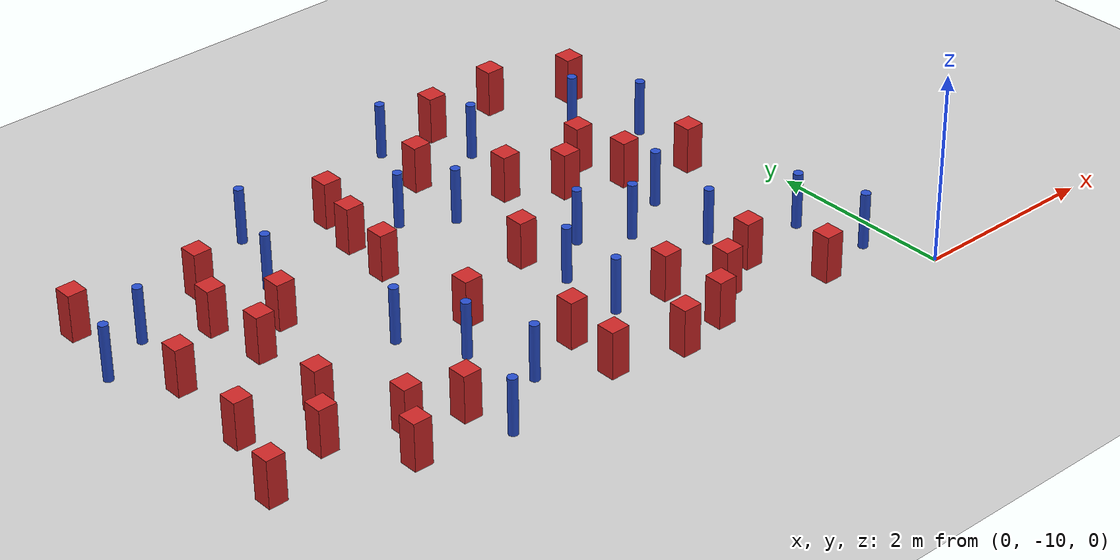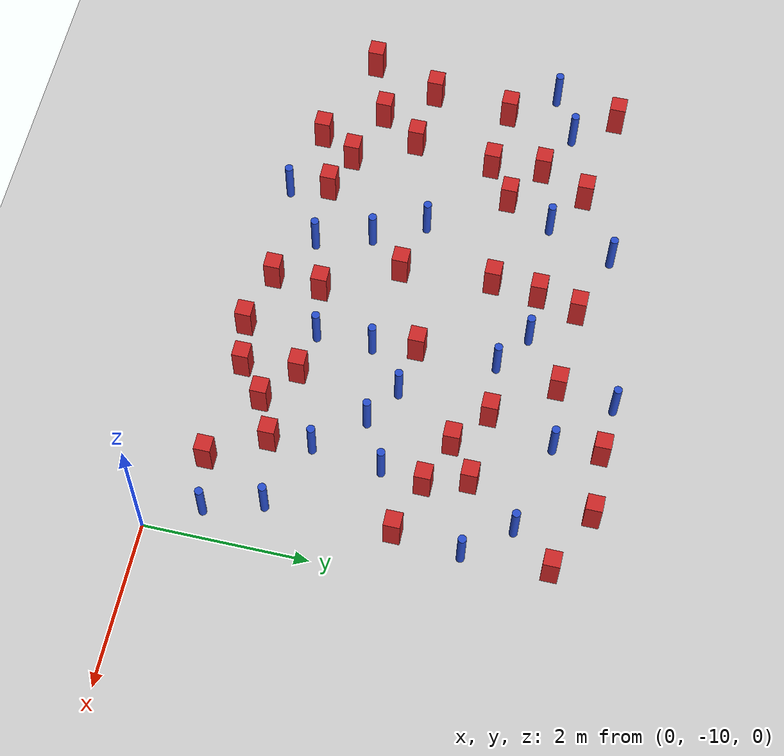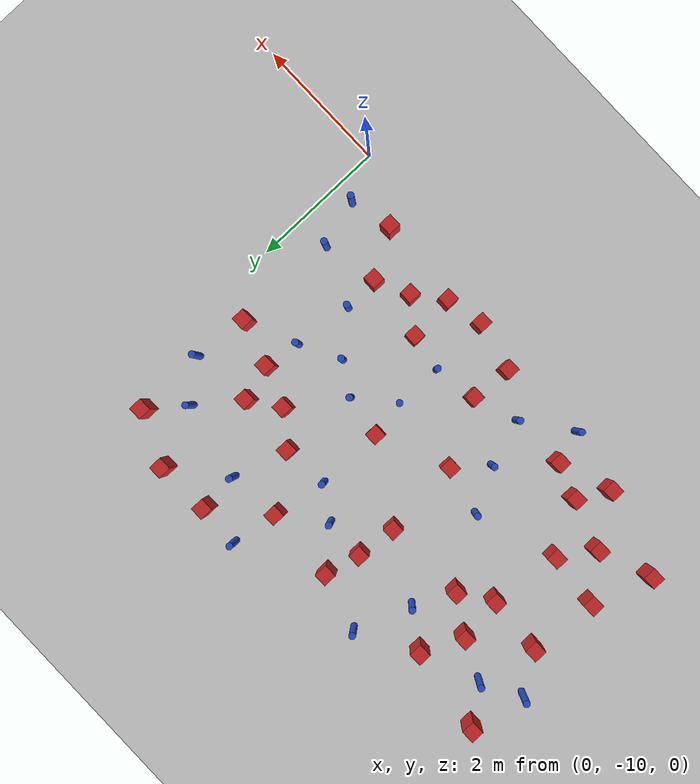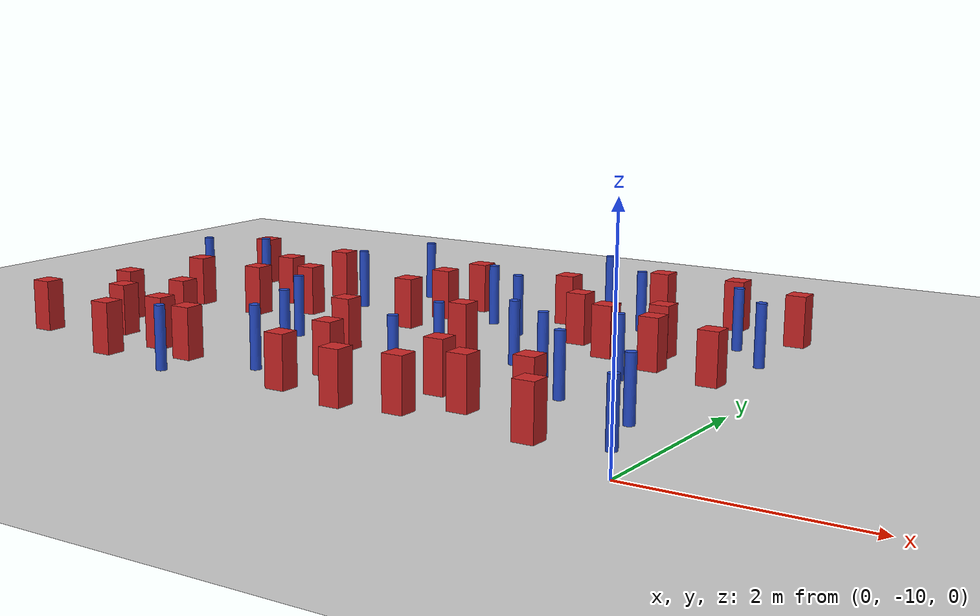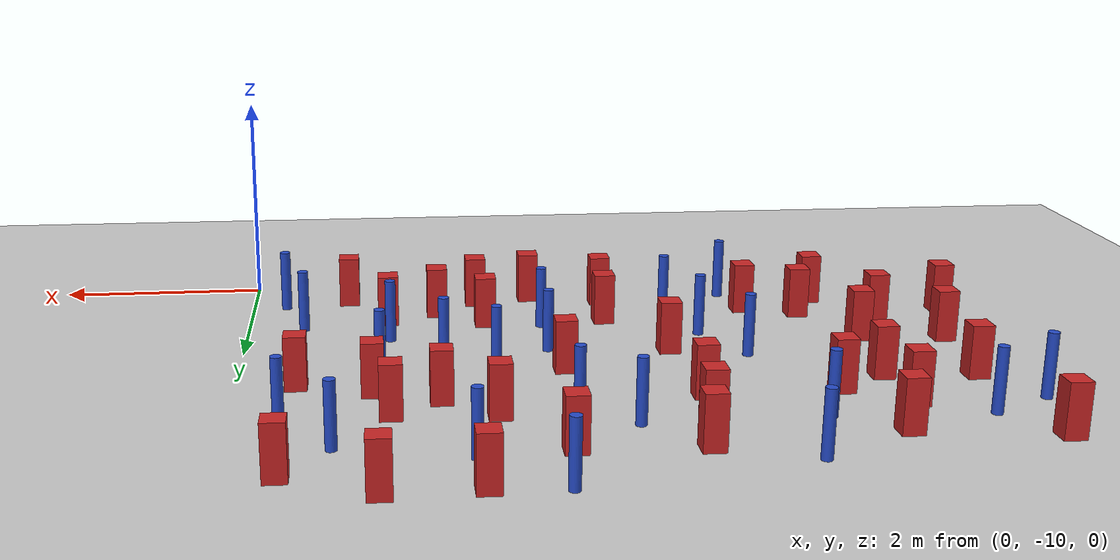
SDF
<sdf version="1.6">
 <world name="default">
  <model name="ground_plane">
   <static>1</static>
   <link name="link">
    <collision name="collision">
     <geometry><plane><normal>0 0 1</normal><size>100 100</size></plane></geometry>
     <surface><friction><ode><mu>100</mu><mu2>50</mu2></ode></friction></surface>
    </collision>
    <visual name="visual">
     <cast_shadows>0</cast_shadows>
     <geometry><plane><normal>0 0 1</normal><size>100 100</size></plane></geometry>
     <material>
      <ambient>1.0 1.0 1.0 1.0</ambient>
      <diffuse>0.8 0.8 0.8 1.0</diffuse>
      <specular>0.01 0.01 0.01 1.000000</specular>
     </material>
    </visual>
   </link>
  </model>
  <model name="square_post_obstacle1">
   <static>true</static>
   <pose>-4.05406104011 -6.65313392118 1.91545236811e-07 -7.35059704564e-06 1.12565212e-07 2.39332434364e-05</pose>
   <link name="link">
    <pose>0 0 0.25 0 -0 0</pose>
    <inertial>
     <mass>100</mass>
     <inertia>
      <ixx>0.166667</ixx>
      <ixy>0</ixy>
      <ixz>0</ixz>
      <iyy>0.166667</iyy>
      <iyz>0</iyz>
      <izz>0.166667</izz>
     </inertia>
    </inertial>
    <collision name="collision"><geometry><box><size>.2 .2 .5</size></box></geometry></collision>
    <visual name="visual">
     <geometry><box><size>.2 .2 .5</size></box></geometry>
     <material>
      <script><name>Gazebo/Red</name><uri>file://media/materials/scripts/gazebo.material</uri></script>
     </material>
    </visual>
   </link>
  </model>
  <model name="square_post_obstacle6">
   <static>true</static>
   <pose>-6.58836928079 -6.93596378803 1.91545236811e-07 -7.35059704564e-06 1.12565212e-07 2.39332434364e-05</pose>
   <link name="link">
    <pose>0 0 0.25 0 -0 0</pose>
    <inertial>
     <mass>100</mass>
     <inertia>
      <ixx>0.166667</ixx>
      <ixy>0</ixy>
      <ixz>0</ixz>
      <iyy>0.166667</iyy>
      <iyz>0</iyz>
      <izz>0.166667</izz>
     </inertia>
    </inertial>
    <collision name="collision"><geometry><box><size>.2 .2 .5</size></box></geometry></collision>
    <visual name="visual">
     <geometry><box><size>.2 .2 .5</size></box></geometry>
     <material>
      <script><name>Gazebo/Red</name><uri>file://media/materials/scripts/gazebo.material</uri></script>
     </material>
    </visual>
   </link>
  </model>
  <model name="pole_obstacle13">
   <static>true</static>
   <pose>-4.3625713466 -8.25112892391 7.38925637345e-09 -8.471706928e-08 1.24976765081e-08 -1.74513093015e-07</pose>
   <link name="link">
    <pose>0 0 0.3 0 -0 0</pose>
    <inertial>
     <mass>1</mass>
     <inertia><ixx>0.145833</ixx><ixy>0</ixy><ixz>0</ixz><iyy>0.145833</iyy><iyz>0</iyz><izz>0.125</izz></inertia>
    </inertial>
    <collision name="collision">
     <geometry><cylinder><radius>0.05</radius><length>.6</length></cylinder></geometry>
    </collision>
    <visual name="visual">
     <geometry><cylinder><radius>0.05</radius><length>.6</length></cylinder></geometry>
     <material>
      <script><name>Gazebo/Blue</name><uri>file://media/materials/scripts/gazebo.material</uri></script>
     </material>
    </visual>
   </link>
  </model>
  <model name="pole_obstacle16">
   <static>true</static>
   <pose>-2.92798849362 -6.37919924518 7.38925637345e-09 -8.47170692798e-08 1.24976765033e-08 -1.74513093019e-07</pose>
   <link name="link">
    <pose>0 0 0.3 0 -0 0</pose>
    <inertial>
     <mass>1</mass>
     <inertia><ixx>0.145833</ixx><ixy>0</ixy><ixz>0</ixz><iyy>0.145833</iyy><iyz>0</iyz><izz>0.125</izz></inertia>
    </inertial>
    <collision name="collision">
     <geometry><cylinder><radius>0.05</radius><length>.6</length></cylinder></geometry>
    </collision>
    <visual name="visual">
     <geometry><cylinder><radius>0.05</radius><length>.6</length></cylinder></geometry>
     <material>
      <script><name>Gazebo/Blue</name><uri>file://media/materials/scripts/gazebo.material</uri></script>
     </material>
    </visual>
   </link>
  </model>
  <model name="pole_obstacle17">
   <static>true</static>
   <pose>-6.41054166428 -6.06811445433 7.38925637345e-09 -8.47170692796e-08 1.24976764786e-08 -1.74513093032e-07</pose>
   <link name="link">
    <pose>0 0 0.3 0 -0 0</pose>
    <inertial>
     <mass>1</mass>
     <inertia><ixx>0.145833</ixx><ixy>0</ixy><ixz>0</ixz><iyy>0.145833</iyy><iyz>0</iyz><izz>0.125</izz></inertia>
    </inertial>
    <collision name="collision">
     <geometry><cylinder><radius>0.05</radius><length>.6</length></cylinder></geometry>
    </collision>
    <visual name="visual">
     <geometry><cylinder><radius>0.05</radius><length>.6</length></cylinder></geometry>
     <material>
      <script><name>Gazebo/Blue</name><uri>file://media/materials/scripts/gazebo.material</uri></script>
     </material>
    </visual>
   </link>
  </model>
  <model name="square_post_obstacle25">
   <static>true</static>
   <pose>-1.85253295231 -9.04641021801 1.91545236811e-07 -7.35059704564e-06 1.12565212e-07 2.39332434364e-05</pose>
   <link name="link">
    <pose>0 0 0.25 0 -0 0</pose>
    <inertial>
     <mass>100</mass>
     <inertia>
      <ixx>0.166667</ixx>
      <ixy>0</ixy>
      <ixz>0</ixz>
      <iyy>0.166667</iyy>
      <iyz>0</iyz>
      <izz>0.166667</izz>
     </inertia>
    </inertial>
    <collision name="collision"><geometry><box><size>.2 .2 .5</size></box></geometry></collision>
    <visual name="visual">
     <geometry><box><size>.2 .2 .5</size></box></geometry>
     <material>
      <script><name>Gazebo/Red</name><uri>file://media/materials/scripts/gazebo.material</uri></script>
     </material>
    </visual>
   </link>
  </model>
  <model name="square_post_obstacle30">
   <static>true</static>
   <pose>-3.97642416767 -7.80159817159 1.91545236811e-07 -7.35059704564e-06 1.12565212e-07 2.39332434364e-05</pose>
   <link name="link">
    <pose>0 0 0.25 0 -0 0</pose>
    <inertial>
     <mass>100</mass>
     <inertia>
      <ixx>0.166667</ixx>
      <ixy>0</ixy>
      <ixz>0</ixz>
      <iyy>0.166667</iyy>
      <iyz>0</iyz>
      <izz>0.166667</izz>
     </inertia>
    </inertial>
    <collision name="collision"><geometry><box><size>.2 .2 .5</size></box></geometry></collision>
    <visual name="visual">
     <geometry><box><size>.2 .2 .5</size></box></geometry>
     <material>
      <script><name>Gazebo/Red</name><uri>file://media/materials/scripts/gazebo.material</uri></script>
     </material>
    </visual>
   </link>
  </model>
  <model name="pole_obstacle33">
   <static>true</static>
   <pose>-3.39611173939 -6.06885074046 7.38925637345e-09 -8.47170692798e-08 1.24976765033e-08 -1.74513093019e-07</pose>
   <link name="link">
    <pose>0 0 0.3 0 -0 0</pose>
    <inertial>
     <mass>1</mass>
     <inertia><ixx>0.145833</ixx><ixy>0</ixy><ixz>0</ixz><iyy>0.145833</iyy><iyz>0</iyz><izz>0.125</izz></inertia>
    </inertial>
    <collision name="collision">
     <geometry><cylinder><radius>0.05</radius><length>.6</length></cylinder></geometry>
    </collision>
    <visual name="visual">
     <geometry><cylinder><radius>0.05</radius><length>.6</length></cylinder></geometry>
     <material>
      <script><name>Gazebo/Blue</name><uri>file://media/materials/scripts/gazebo.material</uri></script>
     </material>
    </visual>
   </link>
  </model>
  <model name="pole_obstacle36">
   <static>true</static>
   <pose>-0.428476729315 -6.30444517662 7.38925637345e-09 -8.471706928e-08 1.24976765079e-08 -1.74513093015e-07</pose>
   <link name="link">
    <pose>0 0 0.3 0 -0 0</pose>
    <inertial>
     <mass>1</mass>
     <inertia><ixx>0.145833</ixx><ixy>0</ixy><ixz>0</ixz><iyy>0.145833</iyy><iyz>0</iyz><izz>0.125</izz></inertia>
    </inertial>
    <collision name="collision">
     <geometry><cylinder><radius>0.05</radius><length>.6</length></cylinder></geometry>
    </collision>
    <visual name="visual">
     <geometry><cylinder><radius>0.05</radius><length>.6</length></cylinder></geometry>
     <material>
      <script><name>Gazebo/Blue</name><uri>file://media/materials/scripts/gazebo.material</uri></script>
     </material>
    </visual>
   </link>
  </model>
  <model name="pole_obstacle42">
   <static>true</static>
   <pose>-1.85867727013 -7.74305967935 7.38925637345e-09 -8.47170692799e-08 1.24976765033e-08 -1.74513093018e-07</pose>
   <link name="link">
    <pose>0 0 0.3 0 -0 0</pose>
    <inertial>
     <mass>1</mass>
     <inertia><ixx>0.145833</ixx><ixy>0</ixy><ixz>0</ixz><iyy>0.145833</iyy><iyz>0</iyz><izz>0.125</izz></inertia>
    </inertial>
    <collision name="collision">
     <geometry><cylinder><radius>0.05</radius><length>.6</length></cylinder></geometry>
    </collision>
    <visual name="visual">
     <geometry><cylinder><radius>0.05</radius><length>.6</length></cylinder></geometry>
     <material>
      <script><name>Gazebo/Blue</name><uri>file://media/materials/scripts/gazebo.material</uri></script>
     </material>
    </visual>
   </link>
  </model>
  <model name="square_post_obstacle49">
   <static>true</static>
   <pose>-2.04827190531 -4.94344330542 1.91545236811e-07 -7.35059704564e-06 1.12565212e-07 2.39332434364e-05</pose>
   <link name="link">
    <pose>0 0 0.25 0 -0 0</pose>
    <inertial>
     <mass>100</mass>
     <inertia>
      <ixx>0.166667</ixx>
      <ixy>0</ixy>
      <ixz>0</ixz>
      <iyy>0.166667</iyy>
      <iyz>0</iyz>
      <izz>0.166667</izz>
     </inertia>
    </inertial>
    <collision name="collision"><geometry><box><size>.2 .2 .5</size></box></geometry></collision>
    <visual name="visual">
     <geometry><box><size>.2 .2 .5</size></box></geometry>
     <material>
      <script><name>Gazebo/Red</name><uri>file://media/materials/scripts/gazebo.material</uri></script>
     </material>
    </visual>
   </link>
  </model>
  <model name="pole_obstacle55">
   <static>true</static>
   <pose>-0.327465769839 -9.36034623043 7.38925637345e-09 -8.47170692796e-08 1.24976764724e-08 -1.74513093036e-07</pose>
   <link name="link">
    <pose>0 0 0.3 0 -0 0</pose>
    <inertial>
     <mass>1</mass>
     <inertia><ixx>0.145833</ixx><ixy>0</ixy><ixz>0</ixz><iyy>0.145833</iyy><iyz>0</iyz><izz>0.125</izz></inertia>
    </inertial>
    <collision name="collision">
     <geometry><cylinder><radius>0.05</radius><length>.6</length></cylinder></geometry>
    </collision>
    <visual name="visual">
     <geometry><cylinder><radius>0.05</radius><length>.6</length></cylinder></geometry>
     <material>
      <script><name>Gazebo/Blue</name><uri>file://media/materials/scripts/gazebo.material</uri></script>
     </material>
    </visual>
   </link>
  </model>
  <model name="square_post_obstacle58">
   <static>true</static>
   <pose>-5.28366621623 -6.68861473166 1.91545236811e-07 -7.35059704564e-06 1.12565212e-07 2.39332434364e-05</pose>
   <link name="link">
    <pose>0 0 0.25 0 -0 0</pose>
    <inertial>
     <mass>100</mass>
     <inertia>
      <ixx>0.166667</ixx>
      <ixy>0</ixy>
      <ixz>0</ixz>
      <iyy>0.166667</iyy>
      <iyz>0</iyz>
      <izz>0.166667</izz>
     </inertia>
    </inertial>
    <collision name="collision"><geometry><box><size>.2 .2 .5</size></box></geometry></collision>
    <visual name="visual">
     <geometry><box><size>.2 .2 .5</size></box></geometry>
     <material>
      <script><name>Gazebo/Red</name><uri>file://media/materials/scripts/gazebo.material</uri></script>
     </material>
    </visual>
   </link>
  </model>
  <model name="pole_obstacle58">
   <static>true</static>
   <pose>-2.84723843766 -7.90626648516 7.38925637345e-09 -8.47170692798e-08 1.24976765033e-08 -1.74513093019e-07</pose>
   <link name="link">
    <pose>0 0 0.3 0 -0 0</pose>
    <inertial>
     <mass>1</mass>
     <inertia><ixx>0.145833</ixx><ixy>0</ixy><ixz>0</ixz><iyy>0.145833</iyy><iyz>0</iyz><izz>0.125</izz></inertia>
    </inertial>
    <collision name="collision">
     <geometry><cylinder><radius>0.05</radius><length>.6</length></cylinder></geometry>
    </collision>
    <visual name="visual">
     <geometry><cylinder><radius>0.05</radius><length>.6</length></cylinder></geometry>
     <material>
      <script><name>Gazebo/Blue</name><uri>file://media/materials/scripts/gazebo.material</uri></script>
     </material>
    </visual>
   </link>
  </model>
  <model name="square_post_obstacle64">
   <static>true</static>
   <pose>-6.97566370245 -8.79320440662 1.91545236811e-07 -7.35059704564e-06 1.12565212e-07 2.39332434364e-05</pose>
   <link name="link">
    <pose>0 0 0.25 0 -0 0</pose>
    <inertial>
     <mass>100</mass>
     <inertia>
      <ixx>0.166667</ixx>
      <ixy>0</ixy>
      <ixz>0</ixz>
      <iyy>0.166667</iyy>
      <iyz>0</iyz>
      <izz>0.166667</izz>
     </inertia>
    </inertial>
    <collision name="collision"><geometry><box><size>.2 .2 .5</size></box></geometry></collision>
    <visual name="visual">
     <geometry><box><size>.2 .2 .5</size></box></geometry>
     <material>
      <script><name>Gazebo/Red</name><uri>file://media/materials/scripts/gazebo.material</uri></script>
     </material>
    </visual>
   </link>
  </model>
  <model name="square_post_obstacle77">
   <static>true</static>
   <pose>-5.74526001308 -6.99516037562 1.91545236811e-07 -7.35059704564e-06 1.12565212e-07 2.39332434364e-05</pose>
   <link name="link">
    <pose>0 0 0.25 0 -0 0</pose>
    <inertial>
     <mass>100</mass>
     <inertia>
      <ixx>0.166667</ixx>
      <ixy>0</ixy>
      <ixz>0</ixz>
      <iyy>0.166667</iyy>
      <iyz>0</iyz>
      <izz>0.166667</izz>
     </inertia>
    </inertial>
    <collision name="collision"><geometry><box><size>.2 .2 .5</size></box></geometry></collision>
    <visual name="visual">
     <geometry><box><size>.2 .2 .5</size></box></geometry>
     <material>
      <script><name>Gazebo/Red</name><uri>file://media/materials/scripts/gazebo.material</uri></script>
     </material>
    </visual>
   </link>
  </model>
  <model name="square_post_obstacle81">
   <static>true</static>
   <pose>-5.47505383534 -8.76458230181 1.91545236811e-07 -7.35059704564e-06 1.12565212e-07 2.39332434364e-05</pose>
   <link name="link">
    <pose>0 0 0.25 0 -0 0</pose>
    <inertial>
     <mass>100</mass>
     <inertia>
      <ixx>0.166667</ixx>
      <ixy>0</ixy>
      <ixz>0</ixz>
      <iyy>0.166667</iyy>
      <iyz>0</iyz>
      <izz>0.166667</izz>
     </inertia>
    </inertial>
    <collision name="collision"><geometry><box><size>.2 .2 .5</size></box></geometry></collision>
    <visual name="visual">
     <geometry><box><size>.2 .2 .5</size></box></geometry>
     <material>
      <script><name>Gazebo/Red</name><uri>file://media/materials/scripts/gazebo.material</uri></script>
     </material>
    </visual>
   </link>
  </model>
  <model name="square_post_obstacle83">
   <static>true</static>
   <pose>-6.7935182337 -5.56143783316 1.91545236811e-07 -7.35059704564e-06 1.12565212e-07 2.39332434364e-05</pose>
   <link name="link">
    <pose>0 0 0.25 0 -0 0</pose>
    <inertial>
     <mass>100</mass>
     <inertia>
      <ixx>0.166667</ixx>
      <ixy>0</ixy>
      <ixz>0</ixz>
      <iyy>0.166667</iyy>
      <iyz>0</iyz>
      <izz>0.166667</izz>
     </inertia>
    </inertial>
    <collision name="collision"><geometry><box><size>.2 .2 .5</size></box></geometry></collision>
    <visual name="visual">
     <geometry><box><size>.2 .2 .5</size></box></geometry>
     <material>
      <script><name>Gazebo/Red</name><uri>file://media/materials/scripts/gazebo.material</uri></script>
     </material>
    </visual>
   </link>
  </model>
  <model name="square_post_obstacle93">
   <static>true</static>
   <pose>-3.4948796606 -8.70978752099 1.91545236811e-07 -7.35059704564e-06 1.12565212e-07 2.39332434364e-05</pose>
   <link name="link">
    <pose>0 0 0.25 0 -0 0</pose>
    <inertial>
     <mass>100</mass>
     <inertia>
      <ixx>0.166667</ixx>
      <ixy>0</ixy>
      <ixz>0</ixz>
      <iyy>0.166667</iyy>
      <iyz>0</iyz>
      <izz>0.166667</izz>
     </inertia>
    </inertial>
    <collision name="collision"><geometry><box><size>.2 .2 .5</size></box></geometry></collision>
    <visual name="visual">
     <geometry><box><size>.2 .2 .5</size></box></geometry>
     <material>
      <script><name>Gazebo/Red</name><uri>file://media/materials/scripts/gazebo.material</uri></script>
     </material>
    </visual>
   </link>
  </model>
  <model name="square_post_obstacle94">
   <static>true</static>
   <pose>-1.3518897373 -6.391897143 1.91545236811e-07 -7.35059704564e-06 1.12565212e-07 2.39332434364e-05</pose>
   <link name="link">
    <pose>0 0 0.25 0 -0 0</pose>
    <inertial>
     <mass>100</mass>
     <inertia>
      <ixx>0.166667</ixx>
      <ixy>0</ixy>
      <ixz>0</ixz>
      <iyy>0.166667</iyy>
      <iyz>0</iyz>
      <izz>0.166667</izz>
     </inertia>
    </inertial>
    <collision name="collision"><geometry><box><size>.2 .2 .5</size></box></geometry></collision>
    <visual name="visual">
     <geometry><box><size>.2 .2 .5</size></box></geometry>
     <material>
      <script><name>Gazebo/Red</name><uri>file://media/materials/scripts/gazebo.material</uri></script>
     </material>
    </visual>
   </link>
  </model>
  <model name="square_post_obstacle95">
   <static>true</static>
   <pose>-2.31485177398 -8.69892524037 1.91545236811e-07 -7.35059704564e-06 1.12565212e-07 2.39332434364e-05</pose>
   <link name="link">
    <pose>0 0 0.25 0 -0 0</pose>
    <inertial>
     <mass>100</mass>
     <inertia>
      <ixx>0.166667</ixx>
      <ixy>0</ixy>
      <ixz>0</ixz>
      <iyy>0.166667</iyy>
      <iyz>0</iyz>
      <izz>0.166667</izz>
     </inertia>
    </inertial>
    <collision name="collision"><geometry><box><size>.2 .2 .5</size></box></geometry></collision>
    <visual name="visual">
     <geometry><box><size>.2 .2 .5</size></box></geometry>
     <material>
      <script><name>Gazebo/Red</name><uri>file://media/materials/scripts/gazebo.material</uri></script>
     </material>
    </visual>
   </link>
  </model>
  <model name="pole_obstacle111">
   <static>true</static>
   <pose>-0.537189609881 -8.66637915086 7.38925637345e-09 -8.47170692796e-08 1.24976764704e-08 -1.74513093037e-07</pose>
   <link name="link">
    <pose>0 0 0.3 0 -0 0</pose>
    <inertial>
     <mass>1</mass>
     <inertia><ixx>0.145833</ixx><ixy>0</ixy><ixz>0</ixz><iyy>0.145833</iyy><iyz>0</iyz><izz>0.125</izz></inertia>
    </inertial>
    <collision name="collision">
     <geometry><cylinder><radius>0.05</radius><length>.6</length></cylinder></geometry>
    </collision>
    <visual name="visual">
     <geometry><cylinder><radius>0.05</radius><length>.6</length></cylinder></geometry>
     <material>
      <script><name>Gazebo/Blue</name><uri>file://media/materials/scripts/gazebo.material</uri></script>
     </material>
    </visual>
   </link>
  </model>
  <model name="square_post_obstacle106">
   <static>true</static>
   <pose>-2.78861553826 -5.60229423198 1.91545236811e-07 -7.35059704564e-06 1.12565212e-07 2.39332434364e-05</pose>
   <link name="link">
    <pose>0 0 0.25 0 -0 0</pose>
    <inertial>
     <mass>100</mass>
     <inertia>
      <ixx>0.166667</ixx>
      <ixy>0</ixy>
      <ixz>0</ixz>
      <iyy>0.166667</iyy>
      <iyz>0</iyz>
      <izz>0.166667</izz>
     </inertia>
    </inertial>
    <collision name="collision"><geometry><box><size>.2 .2 .5</size></box></geometry></collision>
    <visual name="visual">
     <geometry><box><size>.2 .2 .5</size></box></geometry>
     <material>
      <script><name>Gazebo/Red</name><uri>file://media/materials/scripts/gazebo.material</uri></script>
     </material>
    </visual>
   </link>
  </model>
  <model name="pole_obstacle120">
   <static>true</static>
   <pose>-5.00864935056 -6.10837817905 7.38925637345e-09 -8.47170692796e-08 1.24976764786e-08 -1.74513093032e-07</pose>
   <link name="link">
    <pose>0 0 0.3 0 -0 0</pose>
    <inertial>
     <mass>1</mass>
     <inertia><ixx>0.145833</ixx><ixy>0</ixy><ixz>0</ixz><iyy>0.145833</iyy><iyz>0</iyz><izz>0.125</izz></inertia>
    </inertial>
    <collision name="collision">
     <geometry><cylinder><radius>0.05</radius><length>.6</length></cylinder></geometry>
    </collision>
    <visual name="visual">
     <geometry><cylinder><radius>0.05</radius><length>.6</length></cylinder></geometry>
     <material>
      <script><name>Gazebo/Blue</name><uri>file://media/materials/scripts/gazebo.material</uri></script>
     </material>
    </visual>
   </link>
  </model>
  <model name="pole_obstacle132">
   <static>true</static>
   <pose>-1.37706348017 -8.30040814428 7.38925637345e-09 -8.47170692798e-08 1.24976764881e-08 -1.74513093027e-07</pose>
   <link name="link">
    <pose>0 0 0.3 0 -0 0</pose>
    <inertial>
     <mass>1</mass>
     <inertia><ixx>0.145833</ixx><ixy>0</ixy><ixz>0</ixz><iyy>0.145833</iyy><iyz>0</iyz><izz>0.125</izz></inertia>
    </inertial>
    <collision name="collision">
     <geometry><cylinder><radius>0.05</radius><length>.6</length></cylinder></geometry>
    </collision>
    <visual name="visual">
     <geometry><cylinder><radius>0.05</radius><length>.6</length></cylinder></geometry>
     <material>
      <script><name>Gazebo/Blue</name><uri>file://media/materials/scripts/gazebo.material</uri></script>
     </material>
    </visual>
   </link>
  </model>
  <model name="pole_obstacle136">
   <static>true</static>
   <pose>-2.68079597395 -4.89845228056 7.38925637345e-09 -8.47170692798e-08 1.24976765033e-08 -1.74513093019e-07</pose>
   <link name="link">
    <pose>0 0 0.3 0 -0 0</pose>
    <inertial>
     <mass>1</mass>
     <inertia><ixx>0.145833</ixx><ixy>0</ixy><ixz>0</ixz><iyy>0.145833</iyy><iyz>0</iyz><izz>0.125</izz></inertia>
    </inertial>
    <collision name="collision">
     <geometry><cylinder><radius>0.05</radius><length>.6</length></cylinder></geometry>
    </collision>
    <visual name="visual">
     <geometry><cylinder><radius>0.05</radius><length>.6</length></cylinder></geometry>
     <material>
      <script><name>Gazebo/Blue</name><uri>file://media/materials/scripts/gazebo.material</uri></script>
     </material>
    </visual>
   </link>
  </model>
  <model name="pole_obstacle137">
   <static>true</static>
   <pose>-1.27037042421 -7.43815500465 7.38925637345e-09 -8.47170692799e-08 1.24976765033e-08 -1.74513093018e-07</pose>
   <link name="link">
    <pose>0 0 0.3 0 -0 0</pose>
    <inertial>
     <mass>1</mass>
     <inertia><ixx>0.145833</ixx><ixy>0</ixy><ixz>0</ixz><iyy>0.145833</iyy><iyz>0</iyz><izz>0.125</izz></inertia>
    </inertial>
    <collision name="collision">
     <geometry><cylinder><radius>0.05</radius><length>.6</length></cylinder></geometry>
    </collision>
    <visual name="visual">
     <geometry><cylinder><radius>0.05</radius><length>.6</length></cylinder></geometry>
     <material>
      <script><name>Gazebo/Blue</name><uri>file://media/materials/scripts/gazebo.material</uri></script>
     </material>
    </visual>
   </link>
  </model>
  <model name="square_post_obstacle119">
   <static>true</static>
   <pose>-0.531783871129 -7.12682585882 1.91545236811e-07 -7.35059704564e-06 1.12565212e-07 2.39332434364e-05</pose>
   <link name="link">
    <pose>0 0 0.25 0 -0 0</pose>
    <inertial>
     <mass>100</mass>
     <inertia>
      <ixx>0.166667</ixx>
      <ixy>0</ixy>
      <ixz>0</ixz>
      <iyy>0.166667</iyy>
      <iyz>0</iyz>
      <izz>0.166667</izz>
     </inertia>
    </inertial>
    <collision name="collision"><geometry><box><size>.2 .2 .5</size></box></geometry></collision>
    <visual name="visual">
     <geometry><box><size>.2 .2 .5</size></box></geometry>
     <material>
      <script><name>Gazebo/Red</name><uri>file://media/materials/scripts/gazebo.material</uri></script>
     </material>
    </visual>
   </link>
  </model>
  <model name="square_post_obstacle122">
   <static>true</static>
   <pose>-0.470363385983 -5.26293189593 1.91545236811e-07 -7.35059704564e-06 1.12565212e-07 2.39332434364e-05</pose>
   <link name="link">
    <pose>0 0 0.25 0 -0 0</pose>
    <inertial>
     <mass>100</mass>
     <inertia>
      <ixx>0.166667</ixx>
      <ixy>0</ixy>
      <ixz>0</ixz>
      <iyy>0.166667</iyy>
      <iyz>0</iyz>
      <izz>0.166667</izz>
     </inertia>
    </inertial>
    <collision name="collision"><geometry><box><size>.2 .2 .5</size></box></geometry></collision>
    <visual name="visual">
     <geometry><box><size>.2 .2 .5</size></box></geometry>
     <material>
      <script><name>Gazebo/Red</name><uri>file://media/materials/scripts/gazebo.material</uri></script>
     </material>
    </visual>
   </link>
  </model>
  <model name="square_post_obstacle131">
   <static>true</static>
   <pose>-3.99109454356 -6.06677961818 1.91545236811e-07 -7.35059704564e-06 1.12565212e-07 2.39332434364e-05</pose>
   <link name="link">
    <pose>0 0 0.25 0 -0 0</pose>
    <inertial>
     <mass>100</mass>
     <inertia>
      <ixx>0.166667</ixx>
      <ixy>0</ixy>
      <ixz>0</ixz>
      <iyy>0.166667</iyy>
      <iyz>0</iyz>
      <izz>0.166667</izz>
     </inertia>
    </inertial>
    <collision name="collision"><geometry><box><size>.2 .2 .5</size></box></geometry></collision>
    <visual name="visual">
     <geometry><box><size>.2 .2 .5</size></box></geometry>
     <material>
      <script><name>Gazebo/Red</name><uri>file://media/materials/scripts/gazebo.material</uri></script>
     </material>
    </visual>
   </link>
  </model>
  <model name="square_post_obstacle134">
   <static>true</static>
   <pose>-6.68122382151 -7.93561292781 1.91545236811e-07 -7.35059704564e-06 1.12565212e-07 2.39332434364e-05</pose>
   <link name="link">
    <pose>0 0 0.25 0 -0 0</pose>
    <inertial>
     <mass>100</mass>
     <inertia>
      <ixx>0.166667</ixx>
      <ixy>0</ixy>
      <ixz>0</ixz>
      <iyy>0.166667</iyy>
      <iyz>0</iyz>
      <izz>0.166667</izz>
     </inertia>
    </inertial>
    <collision name="collision"><geometry><box><size>.2 .2 .5</size></box></geometry></collision>
    <visual name="visual">
     <geometry><box><size>.2 .2 .5</size></box></geometry>
     <material>
      <script><name>Gazebo/Red</name><uri>file://media/materials/scripts/gazebo.material</uri></script>
     </material>
    </visual>
   </link>
  </model>
  <model name="pole_obstacle145">
   <static>true</static>
   <pose>-4.70202046611 -5.28117678039 7.38925637345e-09 -8.47170692796e-08 1.24976764786e-08 -1.74513093032e-07</pose>
   <link name="link">
    <pose>0 0 0.3 0 -0 0</pose>
    <inertial>
     <mass>1</mass>
     <inertia><ixx>0.145833</ixx><ixy>0</ixy><ixz>0</ixz><iyy>0.145833</iyy><iyz>0</iyz><izz>0.125</izz></inertia>
    </inertial>
    <collision name="collision">
     <geometry><cylinder><radius>0.05</radius><length>.6</length></cylinder></geometry>
    </collision>
    <visual name="visual">
     <geometry><cylinder><radius>0.05</radius><length>.6</length></cylinder></geometry>
     <material>
      <script><name>Gazebo/Blue</name><uri>file://media/materials/scripts/gazebo.material</uri></script>
     </material>
    </visual>
   </link>
  </model>
  <model name="square_post_obstacle136">
   <static>true</static>
   <pose>-6.20697989284 -8.51069006357 1.91545236811e-07 -7.35059704564e-06 1.12565212e-07 2.39332434364e-05</pose>
   <link name="link">
    <pose>0 0 0.25 0 -0 0</pose>
    <inertial>
     <mass>100</mass>
     <inertia>
      <ixx>0.166667</ixx>
      <ixy>0</ixy>
      <ixz>0</ixz>
      <iyy>0.166667</iyy>
      <iyz>0</iyz>
      <izz>0.166667</izz>
     </inertia>
    </inertial>
    <collision name="collision"><geometry><box><size>.2 .2 .5</size></box></geometry></collision>
    <visual name="visual">
     <geometry><box><size>.2 .2 .5</size></box></geometry>
     <material>
      <script><name>Gazebo/Red</name><uri>file://media/materials/scripts/gazebo.material</uri></script>
     </material>
    </visual>
   </link>
  </model>
  <model name="square_post_obstacle139">
   <static>true</static>
   <pose>-1.24682781891 -4.91015835469 1.91545236811e-07 -7.35059704564e-06 1.12565212e-07 2.39332434364e-05</pose>
   <link name="link">
    <pose>0 0 0.25 0 -0 0</pose>
    <inertial>
     <mass>100</mass>
     <inertia>
      <ixx>0.166667</ixx>
      <ixy>0</ixy>
      <ixz>0</ixz>
      <iyy>0.166667</iyy>
      <iyz>0</iyz>
      <izz>0.166667</izz>
     </inertia>
    </inertial>
    <collision name="collision"><geometry><box><size>.2 .2 .5</size></box></geometry></collision>
    <visual name="visual">
     <geometry><box><size>.2 .2 .5</size></box></geometry>
     <material>
      <script><name>Gazebo/Red</name><uri>file://media/materials/scripts/gazebo.material</uri></script>
     </material>
    </visual>
   </link>
  </model>
  <model name="square_post_obstacle146">
   <static>true</static>
   <pose>-4.95856964244 -8.94976178115 1.91545236811e-07 -7.35059704564e-06 1.12565212e-07 2.39332434364e-05</pose>
   <link name="link">
    <pose>0 0 0.25 0 -0 0</pose>
    <inertial>
     <mass>100</mass>
     <inertia>
      <ixx>0.166667</ixx>
      <ixy>0</ixy>
      <ixz>0</ixz>
      <iyy>0.166667</iyy>
      <iyz>0</iyz>
      <izz>0.166667</izz>
     </inertia>
    </inertial>
    <collision name="collision"><geometry><box><size>.2 .2 .5</size></box></geometry></collision>
    <visual name="visual">
     <geometry><box><size>.2 .2 .5</size></box></geometry>
     <material>
      <script><name>Gazebo/Red</name><uri>file://media/materials/scripts/gazebo.material</uri></script>
     </material>
    </visual>
   </link>
  </model>
  <model name="square_post_obstacle148">
   <static>true</static>
   <pose>-0.970080432374 -9.4889126072 1.91545236811e-07 -7.35059704564e-06 1.12565212e-07 2.39332434364e-05</pose>
   <link name="link">
    <pose>0 0 0.25 0 -0 0</pose>
    <inertial>
     <mass>100</mass>
     <inertia>
      <ixx>0.166667</ixx>
      <ixy>0</ixy>
      <ixz>0</ixz>
      <iyy>0.166667</iyy>
      <iyz>0</iyz>
      <izz>0.166667</izz>
     </inertia>
    </inertial>
    <collision name="collision"><geometry><box><size>.2 .2 .5</size></box></geometry></collision>
    <visual name="visual">
     <geometry><box><size>.2 .2 .5</size></box></geometry>
     <material>
      <script><name>Gazebo/Red</name><uri>file://media/materials/scripts/gazebo.material</uri></script>
     </material>
    </visual>
   </link>
  </model>
  <model name="square_post_obstacle150">
   <static>true</static>
   <pose>-2.25700415189 -6.33212168752 1.91545236811e-07 -7.35059704564e-06 1.12565212e-07 2.39332434364e-05</pose>
   <link name="link">
    <pose>0 0 0.25 0 -0 0</pose>
    <inertial>
     <mass>100</mass>
     <inertia>
      <ixx>0.166667</ixx>
      <ixy>0</ixy>
      <ixz>0</ixz>
      <iyy>0.166667</iyy>
      <iyz>0</iyz>
      <izz>0.166667</izz>
     </inertia>
    </inertial>
    <collision name="collision"><geometry><box><size>.2 .2 .5</size></box></geometry></collision>
    <visual name="visual">
     <geometry><box><size>.2 .2 .5</size></box></geometry>
     <material>
      <script><name>Gazebo/Red</name><uri>file://media/materials/scripts/gazebo.material</uri></script>
     </material>
    </visual>
   </link>
  </model>
  <model name="square_post_obstacle152">
   <static>true</static>
   <pose>-3.86661235152 -5.553752173 1.91545236811e-07 -7.35059704564e-06 1.12565212e-07 2.39332434364e-05</pose>
   <link name="link">
    <pose>0 0 0.25 0 -0 0</pose>
    <inertial>
     <mass>100</mass>
     <inertia>
      <ixx>0.166667</ixx>
      <ixy>0</ixy>
      <ixz>0</ixz>
      <iyy>0.166667</iyy>
      <iyz>0</iyz>
      <izz>0.166667</izz>
     </inertia>
    </inertial>
    <collision name="collision"><geometry><box><size>.2 .2 .5</size></box></geometry></collision>
    <visual name="visual">
     <geometry><box><size>.2 .2 .5</size></box></geometry>
     <material>
      <script><name>Gazebo/Red</name><uri>file://media/materials/scripts/gazebo.material</uri></script>
     </material>
    </visual>
   </link>
  </model>
  <model name="square_post_obstacle153">
   <static>true</static>
   <pose>-3.54093368282 -9.31652667725 1.91545236811e-07 -7.35059704564e-06 1.12565212e-07 2.39332434364e-05</pose>
   <link name="link">
    <pose>0 0 0.25 0 -0 0</pose>
    <inertial>
     <mass>100</mass>
     <inertia>
      <ixx>0.166667</ixx>
      <ixy>0</ixy>
      <ixz>0</ixz>
      <iyy>0.166667</iyy>
      <iyz>0</iyz>
      <izz>0.166667</izz>
     </inertia>
    </inertial>
    <collision name="collision"><geometry><box><size>.2 .2 .5</size></box></geometry></collision>
    <visual name="visual">
     <geometry><box><size>.2 .2 .5</size></box></geometry>
     <material>
      <script><name>Gazebo/Red</name><uri>file://media/materials/scripts/gazebo.material</uri></script>
     </material>
    </visual>
   </link>
  </model>
  <model name="square_post_obstacle155">
   <static>true</static>
   <pose>-5.81791672361 -6.3494904595 1.91545236811e-07 -7.35059704564e-06 1.12565212e-07 2.39332434364e-05</pose>
   <link name="link">
    <pose>0 0 0.25 0 -0 0</pose>
    <inertial>
     <mass>100</mass>
     <inertia>
      <ixx>0.166667</ixx>
      <ixy>0</ixy>
      <ixz>0</ixz>
      <iyy>0.166667</iyy>
      <iyz>0</iyz>
      <izz>0.166667</izz>
     </inertia>
    </inertial>
    <collision name="collision"><geometry><box><size>.2 .2 .5</size></box></geometry></collision>
    <visual name="visual">
     <geometry><box><size>.2 .2 .5</size></box></geometry>
     <material>
      <script><name>Gazebo/Red</name><uri>file://media/materials/scripts/gazebo.material</uri></script>
     </material>
    </visual>
   </link>
  </model>
  <model name="square_post_obstacle157">
   <static>true</static>
   <pose>-2.26092999336 -9.37549566018 1.91545236811e-07 -7.35059704564e-06 1.12565212e-07 2.39332434364e-05</pose>
   <link name="link">
    <pose>0 0 0.25 0 -0 0</pose>
    <inertial>
     <mass>100</mass>
     <inertia>
      <ixx>0.166667</ixx>
      <ixy>0</ixy>
      <ixz>0</ixz>
      <iyy>0.166667</iyy>
      <iyz>0</iyz>
      <izz>0.166667</izz>
     </inertia>
    </inertial>
    <collision name="collision"><geometry><box><size>.2 .2 .5</size></box></geometry></collision>
    <visual name="visual">
     <geometry><box><size>.2 .2 .5</size></box></geometry>
     <material>
      <script><name>Gazebo/Red</name><uri>file://media/materials/scripts/gazebo.material</uri></script>
     </material>
    </visual>
   </link>
  </model>
  <model name="pole_obstacle164">
   <static>true</static>
   <pose>-4.69260538225 -7.62643840793 7.38925637345e-09 -8.47170692796e-08 1.24976764786e-08 -1.74513093032e-07</pose>
   <link name="link">
    <pose>0 0 0.3 0 -0 0</pose>
    <inertial>
     <mass>1</mass>
     <inertia><ixx>0.145833</ixx><ixy>0</ixy><ixz>0</ixz><iyy>0.145833</iyy><iyz>0</iyz><izz>0.125</izz></inertia>
    </inertial>
    <collision name="collision">
     <geometry><cylinder><radius>0.05</radius><length>.6</length></cylinder></geometry>
    </collision>
    <visual name="visual">
     <geometry><cylinder><radius>0.05</radius><length>.6</length></cylinder></geometry>
     <material>
      <script><name>Gazebo/Blue</name><uri>file://media/materials/scripts/gazebo.material</uri></script>
     </material>
    </visual>
   </link>
  </model>
  <model name="square_post_obstacle159">
   <static>true</static>
   <pose>-2.81644251103 -9.48881972522 1.91545236811e-07 -7.35059704564e-06 1.12565212e-07 2.39332434364e-05</pose>
   <link name="link">
    <pose>0 0 0.25 0 -0 0</pose>
    <inertial>
     <mass>100</mass>
     <inertia>
      <ixx>0.166667</ixx>
      <ixy>0</ixy>
      <ixz>0</ixz>
      <iyy>0.166667</iyy>
      <iyz>0</iyz>
      <izz>0.166667</izz>
     </inertia>
    </inertial>
    <collision name="collision"><geometry><box><size>.2 .2 .5</size></box></geometry></collision>
    <visual name="visual">
     <geometry><box><size>.2 .2 .5</size></box></geometry>
     <material>
      <script><name>Gazebo/Red</name><uri>file://media/materials/scripts/gazebo.material</uri></script>
     </material>
    </visual>
   </link>
  </model>
  <model name="pole_obstacle169">
   <static>true</static>
   <pose>-4.14566773706 -8.93624713663 7.38925637345e-09 -8.471706928e-08 1.24976765081e-08 -1.74513093015e-07</pose>
   <link name="link">
    <pose>0 0 0.3 0 -0 0</pose>
    <inertial>
     <mass>1</mass>
     <inertia><ixx>0.145833</ixx><ixy>0</ixy><ixz>0</ixz><iyy>0.145833</iyy><iyz>0</iyz><izz>0.125</izz></inertia>
    </inertial>
    <collision name="collision">
     <geometry><cylinder><radius>0.05</radius><length>.6</length></cylinder></geometry>
    </collision>
    <visual name="visual">
     <geometry><cylinder><radius>0.05</radius><length>.6</length></cylinder></geometry>
     <material>
      <script><name>Gazebo/Blue</name><uri>file://media/materials/scripts/gazebo.material</uri></script>
     </material>
    </visual>
   </link>
  </model>
  <model name="square_post_obstacle171">
   <static>true</static>
   <pose>-5.54151581234 -5.75658808084 1.91545236811e-07 -7.35059704564e-06 1.12565212e-07 2.39332434364e-05</pose>
   <link name="link">
    <pose>0 0 0.25 0 -0 0</pose>
    <inertial>
     <mass>100</mass>
     <inertia>
      <ixx>0.166667</ixx>
      <ixy>0</ixy>
      <ixz>0</ixz>
      <iyy>0.166667</iyy>
      <iyz>0</iyz>
      <izz>0.166667</izz>
     </inertia>
    </inertial>
    <collision name="collision"><geometry><box><size>.2 .2 .5</size></box></geometry></collision>
    <visual name="visual">
     <geometry><box><size>.2 .2 .5</size></box></geometry>
     <material>
      <script><name>Gazebo/Red</name><uri>file://media/materials/scripts/gazebo.material</uri></script>
     </material>
    </visual>
   </link>
  </model>
  <model name="square_post_obstacle183">
   <static>true</static>
   <pose>-1.2013889905 -6.91424781787 1.91545236811e-07 -7.35059704564e-06 1.12565212e-07 2.39332434364e-05</pose>
   <link name="link">
    <pose>0 0 0.25 0 -0 0</pose>
    <inertial>
     <mass>100</mass>
     <inertia>
      <ixx>0.166667</ixx>
      <ixy>0</ixy>
      <ixz>0</ixz>
      <iyy>0.166667</iyy>
      <iyz>0</iyz>
      <izz>0.166667</izz>
     </inertia>
    </inertial>
    <collision name="collision"><geometry><box><size>.2 .2 .5</size></box></geometry></collision>
    <visual name="visual">
     <geometry><box><size>.2 .2 .5</size></box></geometry>
     <material>
      <script><name>Gazebo/Red</name><uri>file://media/materials/scripts/gazebo.material</uri></script>
     </material>
    </visual>
   </link>
  </model>
  <model name="square_post_obstacle189">
   <static>true</static>
   <pose>-1.36009692246 -8.82042509315 1.91545236811e-07 -7.35059704564e-06 1.12565212e-07 2.39332434364e-05</pose>
   <link name="link">
    <pose>0 0 0.25 0 -0 0</pose>
    <inertial>
     <mass>100</mass>
     <inertia>
      <ixx>0.166667</ixx>
      <ixy>0</ixy>
      <ixz>0</ixz>
      <iyy>0.166667</iyy>
      <iyz>0</iyz>
      <izz>0.166667</izz>
     </inertia>
    </inertial>
    <collision name="collision"><geometry><box><size>.2 .2 .5</size></box></geometry></collision>
    <visual name="visual">
     <geometry><box><size>.2 .2 .5</size></box></geometry>
     <material>
      <script><name>Gazebo/Red</name><uri>file://media/materials/scripts/gazebo.material</uri></script>
     </material>
    </visual>
   </link>
  </model>
  <model name="square_post_obstacle194">
   <static>true</static>
   <pose>-5.73064483615 -9.21067394355 1.91545236811e-07 -7.35059704564e-06 1.12565212e-07 2.39332434364e-05</pose>
   <link name="link">
    <pose>0 0 0.25 0 -0 0</pose>
    <inertial>
     <mass>100</mass>
     <inertia>
      <ixx>0.166667</ixx>
      <ixy>0</ixy>
      <ixz>0</ixz>
      <iyy>0.166667</iyy>
      <iyz>0</iyz>
      <izz>0.166667</izz>
     </inertia>
    </inertial>
    <collision name="collision"><geometry><box><size>.2 .2 .5</size></box></geometry></collision>
    <visual name="visual">
     <geometry><box><size>.2 .2 .5</size></box></geometry>
     <material>
      <script><name>Gazebo/Red</name><uri>file://media/materials/scripts/gazebo.material</uri></script>
     </material>
    </visual>
   </link>
  </model>
  <model name="square_post_obstacle195">
   <static>true</static>
   <pose>-5.87550297416 -8.01511410655 1.91545236811e-07 -7.35059704564e-06 1.12565212e-07 2.39332434364e-05</pose>
   <link name="link">
    <pose>0 0 0.25 0 -0 0</pose>
    <inertial>
     <mass>100</mass>
     <inertia>
      <ixx>0.166667</ixx>
      <ixy>0</ixy>
      <ixz>0</ixz>
      <iyy>0.166667</iyy>
      <iyz>0</iyz>
      <izz>0.166667</izz>
     </inertia>
    </inertial>
    <collision name="collision"><geometry><box><size>.2 .2 .5</size></box></geometry></collision>
    <visual name="visual">
     <geometry><box><size>.2 .2 .5</size></box></geometry>
     <material>
      <script><name>Gazebo/Red</name><uri>file://media/materials/scripts/gazebo.material</uri></script>
     </material>
    </visual>
   </link>
  </model>
  <model name="square_post_obstacle198">
   <static>true</static>
   <pose>-1.78779819886 -6.69413979731 1.91545236811e-07 -7.35059704564e-06 1.12565212e-07 2.39332434364e-05</pose>
   <link name="link">
    <pose>0 0 0.25 0 -0 0</pose>
    <inertial>
     <mass>100</mass>
     <inertia>
      <ixx>0.166667</ixx>
      <ixy>0</ixy>
      <ixz>0</ixz>
      <iyy>0.166667</iyy>
      <iyz>0</iyz>
      <izz>0.166667</izz>
     </inertia>
    </inertial>
    <collision name="collision"><geometry><box><size>.2 .2 .5</size></box></geometry></collision>
    <visual name="visual">
     <geometry><box><size>.2 .2 .5</size></box></geometry>
     <material>
      <script><name>Gazebo/Red</name><uri>file://media/materials/scripts/gazebo.material</uri></script>
     </material>
    </visual>
   </link>
  </model>
  <model name="pole_obstacle191">
   <static>true</static>
   <pose>-2.32169609779 -7.46123869863 7.38925637345e-09 -8.47170692798e-08 1.24976765033e-08 -1.74513093019e-07</pose>
   <link name="link">
    <pose>0 0 0.3 0 -0 0</pose>
    <inertial>
     <mass>1</mass>
     <inertia><ixx>0.145833</ixx><ixy>0</ixy><ixz>0</ixz><iyy>0.145833</iyy><iyz>0</iyz><izz>0.125</izz></inertia>
    </inertial>
    <collision name="collision">
     <geometry><cylinder><radius>0.05</radius><length>.6</length></cylinder></geometry>
    </collision>
    <visual name="visual">
     <geometry><cylinder><radius>0.05</radius><length>.6</length></cylinder></geometry>
     <material>
      <script><name>Gazebo/Blue</name><uri>file://media/materials/scripts/gazebo.material</uri></script>
     </material>
    </visual>
   </link>
  </model>
  <model name="square_post_obstacle207">
   <static>true</static>
   <pose>-2.93823570662 -7.36696030817 1.91545236811e-07 -7.35059704564e-06 1.12565212e-07 2.39332434364e-05</pose>
   <link name="link">
    <pose>0 0 0.25 0 -0 0</pose>
    <inertial>
     <mass>100</mass>
     <inertia>
      <ixx>0.166667</ixx>
      <ixy>0</ixy>
      <ixz>0</ixz>
      <iyy>0.166667</iyy>
      <iyz>0</iyz>
      <izz>0.166667</izz>
     </inertia>
    </inertial>
    <collision name="collision"><geometry><box><size>.2 .2 .5</size></box></geometry></collision>
    <visual name="visual">
     <geometry><box><size>.2 .2 .5</size></box></geometry>
     <material>
      <script><name>Gazebo/Red</name><uri>file://media/materials/scripts/gazebo.material</uri></script>
     </material>
    </visual>
   </link>
  </model>
  <model name="pole_obstacle206">
   <static>true</static>
   <pose>-2.00895265682 -5.51706516473 7.38925637345e-09 -8.471706928e-08 1.24976765103e-08 -1.74513093015e-07</pose>
   <link name="link">
    <pose>0 0 0.3 0 -0 0</pose>
    <inertial>
     <mass>1</mass>
     <inertia><ixx>0.145833</ixx><ixy>0</ixy><ixz>0</ixz><iyy>0.145833</iyy><iyz>0</iyz><izz>0.125</izz></inertia>
    </inertial>
    <collision name="collision">
     <geometry><cylinder><radius>0.05</radius><length>.6</length></cylinder></geometry>
    </collision>
    <visual name="visual">
     <geometry><cylinder><radius>0.05</radius><length>.6</length></cylinder></geometry>
     <material>
      <script><name>Gazebo/Blue</name><uri>file://media/materials/scripts/gazebo.material</uri></script>
     </material>
    </visual>
   </link>
  </model>
  <model name="pole_obstacle219">
   <static>true</static>
   <pose>-6.98483439045 -6.37182723593 7.38925637345e-09 -8.47170692796e-08 1.24976764786e-08 -1.74513093032e-07</pose>
   <link name="link">
    <pose>0 0 0.3 0 -0 0</pose>
    <inertial>
     <mass>1</mass>
     <inertia><ixx>0.145833</ixx><ixy>0</ixy><ixz>0</ixz><iyy>0.145833</iyy><iyz>0</iyz><izz>0.125</izz></inertia>
    </inertial>
    <collision name="collision">
     <geometry><cylinder><radius>0.05</radius><length>.6</length></cylinder></geometry>
    </collision>
    <visual name="visual">
     <geometry><cylinder><radius>0.05</radius><length>.6</length></cylinder></geometry>
     <material>
      <script><name>Gazebo/Blue</name><uri>file://media/materials/scripts/gazebo.material</uri></script>
     </material>
    </visual>
   </link>
  </model>
  <model name="pole_obstacle229">
   <static>true</static>
   <pose>-4.83237999043 -9.43798997922 7.38925637345e-09 -8.471706928e-08 1.24976765081e-08 -1.74513093015e-07</pose>
   <link name="link">
    <pose>0 0 0.3 0 -0 0</pose>
    <inertial>
     <mass>1</mass>
     <inertia><ixx>0.145833</ixx><ixy>0</ixy><ixz>0</ixz><iyy>0.145833</iyy><iyz>0</iyz><izz>0.125</izz></inertia>
    </inertial>
    <collision name="collision">
     <geometry><cylinder><radius>0.05</radius><length>.6</length></cylinder></geometry>
    </collision>
    <visual name="visual">
     <geometry><cylinder><radius>0.05</radius><length>.6</length></cylinder></geometry>
     <material>
      <script><name>Gazebo/Blue</name><uri>file://media/materials/scripts/gazebo.material</uri></script>
     </material>
    </visual>
   </link>
  </model>
  <model name="pole_obstacle231">
   <static>true</static>
   <pose>-0.872759990425 -5.76673997922 7.38925637345e-09 -8.471706928e-08 1.24976765086e-08 -1.74513093015e-07</pose>
   <link name="link">
    <pose>0 0 0.3 0 -0 0</pose>
    <inertial>
     <mass>1</mass>
     <inertia><ixx>0.145833</ixx><ixy>0</ixy><ixz>0</ixz><iyy>0.145833</iyy><iyz>0</iyz><izz>0.125</izz></inertia>
    </inertial>
    <collision name="collision">
     <geometry><cylinder><radius>0.05</radius><length>.6</length></cylinder></geometry>
    </collision>
    <visual name="visual">
     <geometry><cylinder><radius>0.05</radius><length>.6</length></cylinder></geometry>
     <material>
      <script><name>Gazebo/Blue</name><uri>file://media/materials/scripts/gazebo.material</uri></script>
     </material>
    </visual>
   </link>
  </model>
  <model name="pole_obstacle241">
   <static>true</static>
   <pose>-2.86073999043 -8.60744997922 7.38925637345e-09 -8.47170692793e-08 1.24976764408e-08 -1.74513093041e-07</pose>
   <link name="link">
    <pose>0 0 0.3 0 -0 0</pose>
    <inertial>
     <mass>1</mass>
     <inertia><ixx>0.145833</ixx><ixy>0</ixy><ixz>0</ixz><iyy>0.145833</iyy><iyz>0</iyz><izz>0.125</izz></inertia>
    </inertial>
    <collision name="collision">
     <geometry><cylinder><radius>0.05</radius><length>.6</length></cylinder></geometry>
    </collision>
    <visual name="visual">
     <geometry><cylinder><radius>0.05</radius><length>.6</length></cylinder></geometry>
     <material>
      <script><name>Gazebo/Blue</name><uri>file://media/materials/scripts/gazebo.material</uri></script>
     </material>
    </visual>
   </link>
  </model>
 </world>
</sdf>
